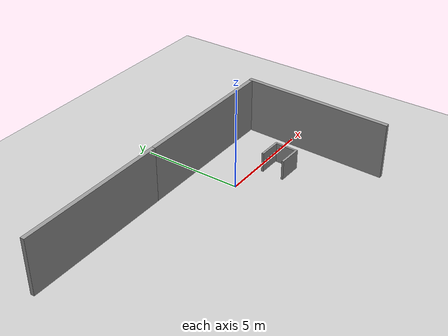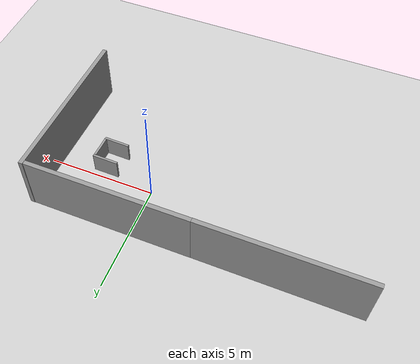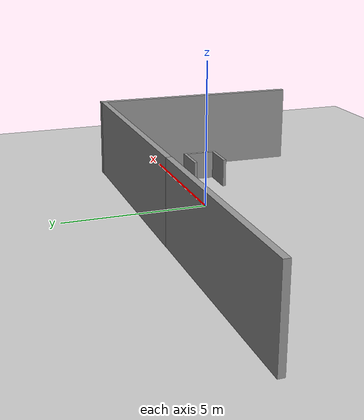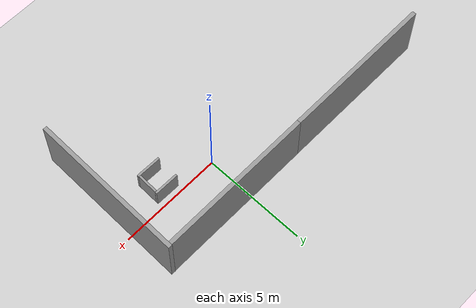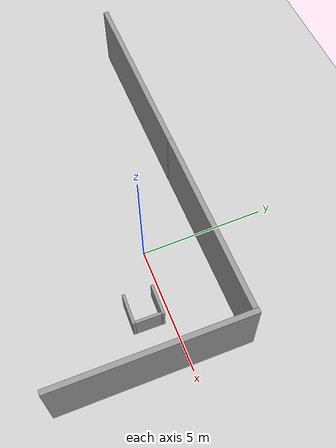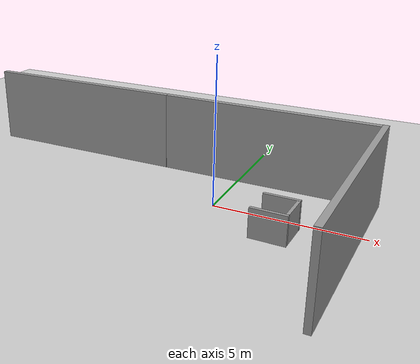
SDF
<sdf version="1.6">
 <world name="default">
  <light name="sun" type="directional">
   <pose>0 0 10 0 -0 0</pose>
   <diffuse>0.8 0.8 0.8 1</diffuse>
   <specular>0.2 0.2 0.2 1</specular>
   <attenuation>
    <range>1000</range>
    <constant>0.9</constant>
    <linear>0.01</linear>
    <quadratic>0.001</quadratic>
   </attenuation>
   <direction>-0.5 0.1 -0.9</direction>
  </light>
  <model name="ground_plane">
   <static>1</static>
   <link name="link">
    <collision name="collision">
     <geometry><plane><normal>0 0 1</normal><size>100 100</size></plane></geometry>
     <surface><friction><ode><mu>100</mu><mu2>50</mu2></ode></friction></surface>
    </collision>
    <visual name="visual">
     <cast_shadows>0</cast_shadows>
     <geometry><plane><normal>0 0 1</normal><size>100 100</size></plane></geometry>
     <material>
      <script><uri>file://media/materials/scripts/gazebo.material</uri><name>Gazebo/Grey</name></script>
     </material>
    </visual>
   </link>
  </model>
  <gravity>0 0 -9.8</gravity>
  <magnetic_field>6e-06 2.3e-05 -4.2e-05</magnetic_field>
  <atmosphere type="adiabatic"/>
  <physics name="default_physics" default="0" type="ode">
   <max_step_size>0.001</max_step_size>
   <real_time_factor>1</real_time_factor>
   <real_time_update_rate>1000</real_time_update_rate>
  </physics>
  <scene><ambient>0.4 0.4 0.4 1</ambient><background>0.7 0.7 0.7 1</background><shadows>1</shadows></scene>
  <audio><device>default</device></audio>
  <spherical_coordinates>
   <surface_model>EARTH_WGS84</surface_model>
   <latitude_deg>0</latitude_deg>
   <longitude_deg>0</longitude_deg>
   <elevation>0</elevation>
   <heading_deg>0</heading_deg>
  </spherical_coordinates>
  <model name="line10">
   <link name="link">
    <inertial>
     <mass>1</mass>
     <inertia>
      <ixx>0.166667</ixx>
      <ixy>0</ixy>
      <ixz>0</ixz>
      <iyy>0.166667</iyy>
      <iyz>0</iyz>
      <izz>0.166667</izz>
     </inertia>
    </inertial>
    <visual name="visual">
     <geometry><box><size>1 0.106114 1</size></box></geometry>
     <material>
      <script><name>Gazebo/Grey</name><uri>file://media/materials/scripts/gazebo.material</uri></script>
     </material>
    </visual>
    <collision name="collision">
     <geometry><box><size>1 0.106114 1</size></box></geometry>
     <surface>
      <friction>
       <ode><mu>1</mu><mu2>1</mu2><fdir1>0 0 0</fdir1><slip1>0</slip1><slip2>0</slip2></ode>
       <torsional>
        <coefficient>1</coefficient>
        <patch_radius>0</patch_radius>
        <surface_radius>0</surface_radius>
        <use_patch_radius>1</use_patch_radius>
        <ode><slip>0</slip></ode>
       </torsional>
      </friction>
      <bounce><restitution_coefficient>0</restitution_coefficient><threshold>1e+06</threshold></bounce>
      <contact>
       <collide_without_contact>0</collide_without_contact>
       <collide_without_contact_bitmask>1</collide_without_contact_bitmask>
       <collide_bitmask>1</collide_bitmask>
       <ode>
        <soft_cfm>0</soft_cfm>
        <soft_erp>0.2</soft_erp>
        <kp>1e+13</kp>
        <kd>1</kd>
        <max_vel>0.01</max_vel>
        <min_depth>0</min_depth>
       </ode>
       <bullet>
        <split_impulse>1</split_impulse>
        <split_impulse_penetration_threshold>-0.01</split_impulse_penetration_threshold>
        <soft_cfm>0</soft_cfm>
        <soft_erp>0.2</soft_erp>
        <kp>1e+13</kp>
        <kd>1</kd>
       </bullet>
      </contact>
     </surface>
    </collision>
   </link>
   <static>0</static>
   <pose>2.91056 -0.892335 0.499991 0 1e-06 1.53959</pose>
  </model>
  <model name="line12">
   <link name="link">
    <inertial>
     <mass>1</mass>
     <inertia>
      <ixx>0.166667</ixx>
      <ixy>0</ixy>
      <ixz>0</ixz>
      <iyy>0.166667</iyy>
      <iyz>0</iyz>
      <izz>0.166667</izz>
     </inertia>
    </inertial>
    <visual name="visual">
     <geometry><box><size>1.20313 0.106114 1</size></box></geometry>
     <material>
      <script><name>Gazebo/Grey</name><uri>file://media/materials/scripts/gazebo.material</uri></script>
     </material>
    </visual>
    <collision name="collision">
     <geometry><box><size>1.20313 0.106114 1</size></box></geometry>
     <surface>
      <friction>
       <ode><mu>1</mu><mu2>1</mu2><fdir1>0 0 0</fdir1><slip1>0</slip1><slip2>0</slip2></ode>
       <torsional>
        <coefficient>1</coefficient>
        <patch_radius>0</patch_radius>
        <surface_radius>0</surface_radius>
        <use_patch_radius>1</use_patch_radius>
        <ode><slip>0</slip></ode>
       </torsional>
      </friction>
      <bounce><restitution_coefficient>0</restitution_coefficient><threshold>1e+06</threshold></bounce>
      <contact>
       <collide_without_contact>0</collide_without_contact>
       <collide_without_contact_bitmask>1</collide_without_contact_bitmask>
       <collide_bitmask>1</collide_bitmask>
       <ode>
        <soft_cfm>0</soft_cfm>
        <soft_erp>0.2</soft_erp>
        <kp>1e+13</kp>
        <kd>1</kd>
        <max_vel>0.01</max_vel>
        <min_depth>0</min_depth>
       </ode>
       <bullet>
        <split_impulse>1</split_impulse>
        <split_impulse_penetration_threshold>-0.01</split_impulse_penetration_threshold>
        <soft_cfm>0</soft_cfm>
        <soft_erp>0.2</soft_erp>
        <kp>1e+13</kp>
        <kd>1</kd>
       </bullet>
      </contact>
     </surface>
    </collision>
   </link>
   <static>0</static>
   <pose>2.34515 -1.43304 0.499559 -0 -0 -0.022857</pose>
  </model>
  <model name="line12_clone">
   <link name="link">
    <inertial>
     <mass>1</mass>
     <inertia>
      <ixx>0.166667</ixx>
      <ixy>0</ixy>
      <ixz>0</ixz>
      <iyy>0.166667</iyy>
      <iyz>0</iyz>
      <izz>0.166667</izz>
     </inertia>
    </inertial>
    <visual name="visual">
     <geometry><box><size>1.20313 0.106114 1</size></box></geometry>
     <material>
      <script><name>Gazebo/Grey</name><uri>file://media/materials/scripts/gazebo.material</uri></script>
     </material>
    </visual>
    <collision name="collision">
     <geometry><box><size>1.20313 0.106114 1</size></box></geometry>
     <surface>
      <friction>
       <ode><mu>1</mu><mu2>1</mu2><fdir1>0 0 0</fdir1><slip1>0</slip1><slip2>0</slip2></ode>
       <torsional>
        <coefficient>1</coefficient>
        <patch_radius>0</patch_radius>
        <surface_radius>0</surface_radius>
        <use_patch_radius>1</use_patch_radius>
        <ode><slip>0</slip></ode>
       </torsional>
      </friction>
      <bounce><restitution_coefficient>0</restitution_coefficient><threshold>1e+06</threshold></bounce>
      <contact>
       <collide_without_contact>0</collide_without_contact>
       <collide_without_contact_bitmask>1</collide_without_contact_bitmask>
       <collide_bitmask>1</collide_bitmask>
       <ode>
        <soft_cfm>0</soft_cfm>
        <soft_erp>0.2</soft_erp>
        <kp>1e+13</kp>
        <kd>1</kd>
        <max_vel>0.01</max_vel>
        <min_depth>0</min_depth>
       </ode>
       <bullet>
        <split_impulse>1</split_impulse>
        <split_impulse_penetration_threshold>-0.01</split_impulse_penetration_threshold>
        <soft_cfm>0</soft_cfm>
        <soft_erp>0.2</soft_erp>
        <kp>1e+13</kp>
        <kd>1</kd>
       </bullet>
      </contact>
     </surface>
    </collision>
   </link>
   <static>0</static>
   <pose>2.38238 -0.324995 0.499996 1e-06 -6e-06 -0.014943</pose>
  </model>
  <model name="grey_wall">
   <static>1</static>
   <link name="link">
    <pose>0 0 1.4 0 -0 0</pose>
    <collision name="collision"><geometry><box><size>7.5 0.2 2.8</size></box></geometry></collision>
    <visual name="visual">
     <cast_shadows>0</cast_shadows>
     <geometry><box><size>7.5 0.2 2.8</size></box></geometry>
     <material>
      <script>
       <uri>model://grey_wall/materials/scripts</uri>
       <uri>model://grey_wall/materials/textures</uri>
       <name>vrc/grey_wall</name>
      </script>
     </material>
    </visual>
   </link>
   <pose>0.87754 2.29928 0 0 -0 0</pose>
  </model>
  <model name="grey_wall_0">
   <static>1</static>
   <link name="link">
    <pose>0 0 1.4 0 -0 0</pose>
    <collision name="collision"><geometry><box><size>7.5 0.2 2.8</size></box></geometry></collision>
    <visual name="visual">
     <cast_shadows>0</cast_shadows>
     <geometry><box><size>7.5 0.2 2.8</size></box></geometry>
     <material>
      <script>
       <uri>model://grey_wall/materials/scripts</uri>
       <uri>model://grey_wall/materials/textures</uri>
       <name>vrc/grey_wall</name>
      </script>
     </material>
    </visual>
   </link>
   <pose>-6.61877 2.29546 0 0 -0 0</pose>
  </model>
  <model name="grey_wall_1">
   <static>1</static>
   <link name="link">
    <pose>0 0 1.4 0 -0 0</pose>
    <collision name="collision"><geometry><box><size>7.5 0.2 2.8</size></box></geometry></collision>
    <visual name="visual">
     <cast_shadows>0</cast_shadows>
     <geometry><box><size>7.5 0.2 2.8</size></box></geometry>
     <material>
      <script>
       <uri>model://grey_wall/materials/scripts</uri>
       <uri>model://grey_wall/materials/textures</uri>
       <name>vrc/grey_wall</name>
      </script>
     </material>
    </visual>
   </link>
   <pose>4.65947 -1.33675 0 0 0 -1.59118</pose>
  </model>
 </world>
</sdf>
